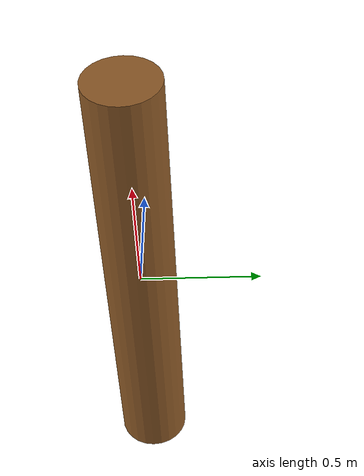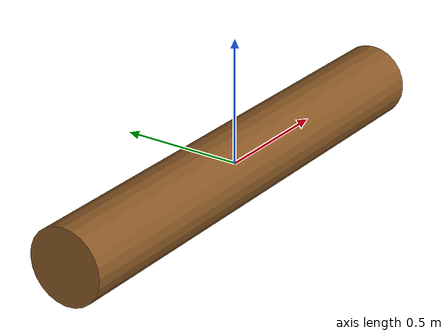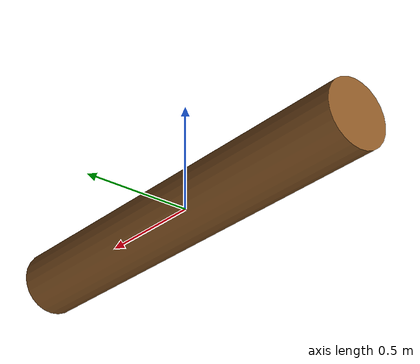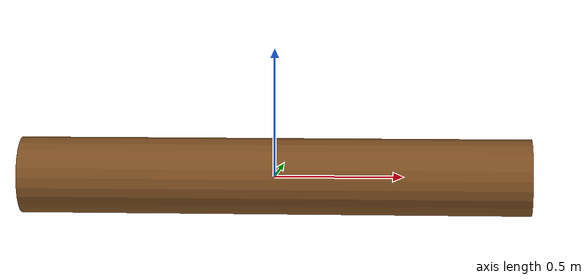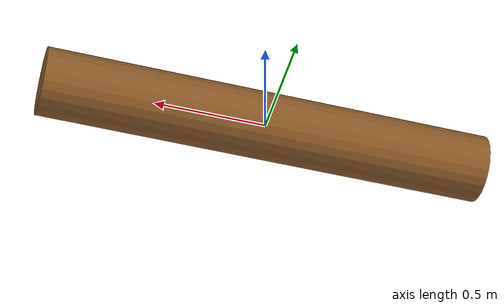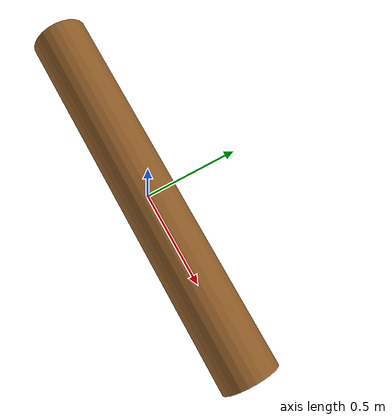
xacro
<?xml version="1.0"?>
<robot xmlns:xacro="http://www.ros.org/wiki/xacro" name="floating_log">

  <!-- ================================================================
       Parameters — change once, apply everywhere
       ================================================================ -->
  <xacro:property name="log_length" value="2.0" />   <!-- metres -->
  <xacro:property name="log_radius" value="0.15" />  <!-- metres -->
  <xacro:property name="log_mass"   value="50.0" />  <!-- kg     -->

  <!-- Pre-computed inertia tensor (solid cylinder, axis = X) -->
  <xacro:property name="ixx" value="0.562500"  />  <!-- 0.5  * m * r²           -->
  <xacro:property name="iyy" value="16.947917" />  <!-- (1/12) * m * (3r² + L²) -->
  <xacro:property name="izz" value="16.947917" />  <!-- == iyy (axial symmetry)  -->

  <link name="base_link">

    <!-- ── Inertial ─────────────────────────────────────────────── -->
    <inertial>
      <!-- CoM at the geometric centre of the cylinder -->
      <origin xyz="0 0 0" rpy="0 0 0" />
      <mass value="${log_mass}" />
      <inertia
        ixx="${ixx}"  ixy="0" ixz="0"
                      iyy="${iyy}" iyz="0"
                                   izz="${izz}" />
    </inertial>

    <!-- ── Visual ───────────────────────────────────────────────── -->
    <!--
      URDF cylinder primitives are defined with their axis along Z.
      Rotating π/2 about Y realigns that axis to X, so the log
      appears horizontal (bow-to-stern along the body X-axis).
    -->
    <visual>
      <origin xyz="0 0 0" rpy="0 ${pi/2} 0" />
      <geometry>
        <cylinder radius="${log_radius}" length="${log_length}" />
      </geometry>
      <material name="wood_brown">
        <color rgba="0.55 0.35 0.15 1.0" />
      </material>
    </visual>

    <!-- ── Collision ─────────────────────────────────────────────── -->
    <!--
      Collision geometry is identical to visual geometry.
      Same rotation applied so physics and visuals stay coincident.
    -->
    <collision>
      <origin xyz="0 0 0" rpy="0 ${pi/2} 0" />
      <geometry>
        <cylinder radius="${log_radius}" length="${log_length}" />
      </geometry>
    </collision>

  </link>

  <!-- ================================================================
       Gazebo material hint (Gazebo Garden / gz-sim)
       ================================================================ -->
  <gazebo reference="base_link">
    <material>Gazebo/Wood</material>
  </gazebo>

</robot>
